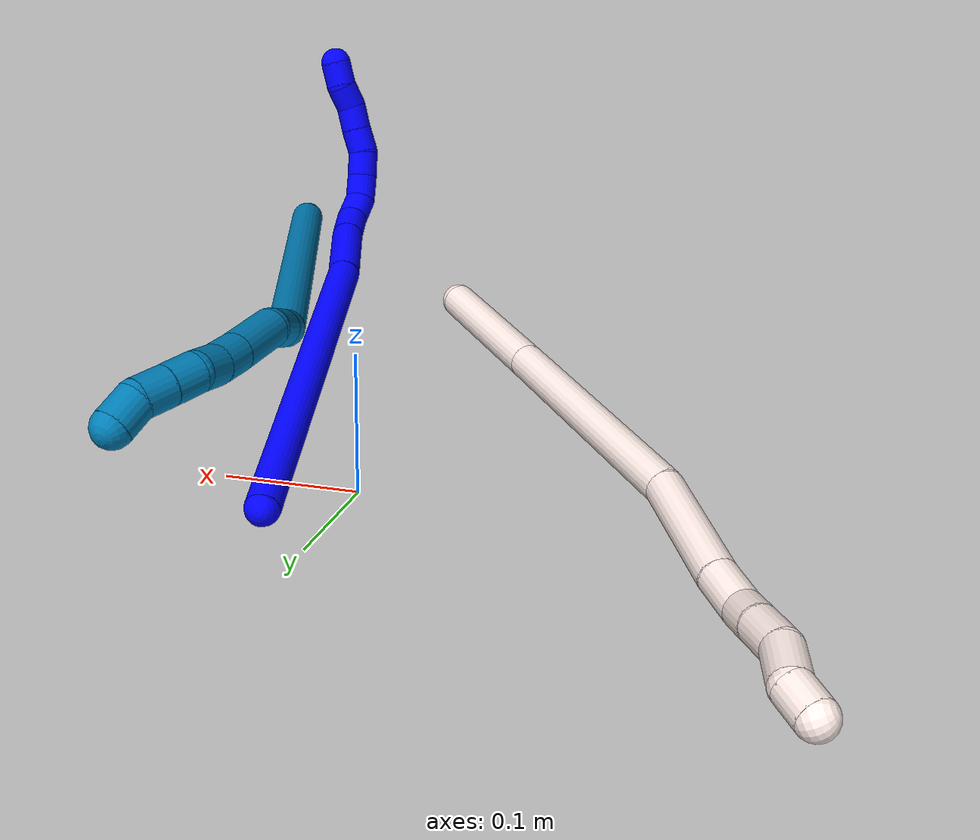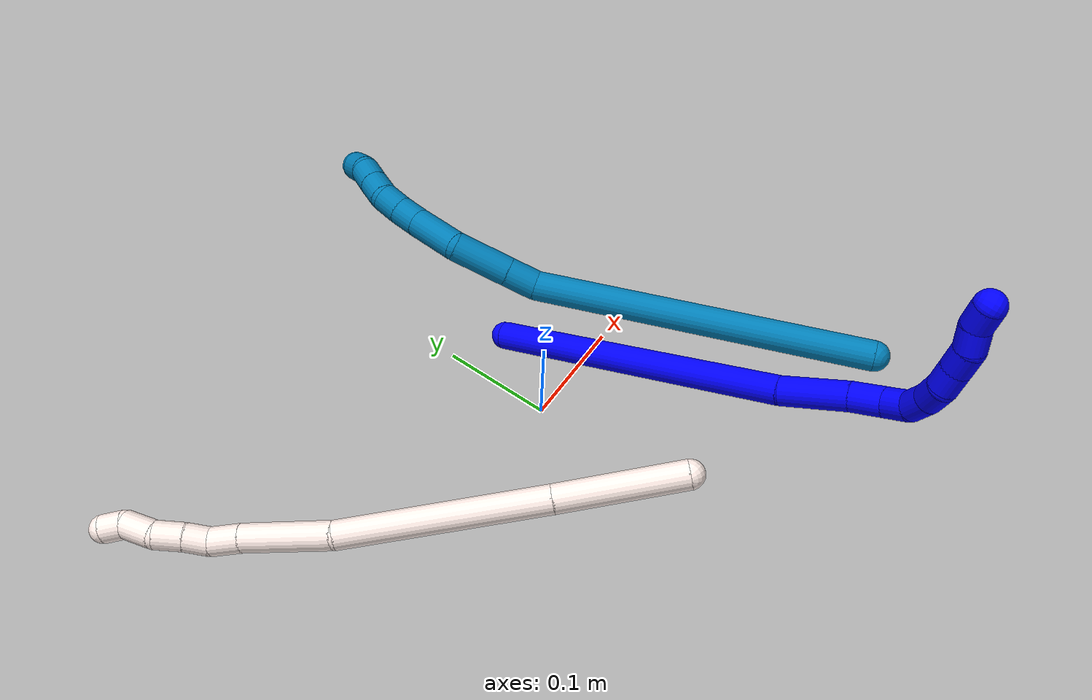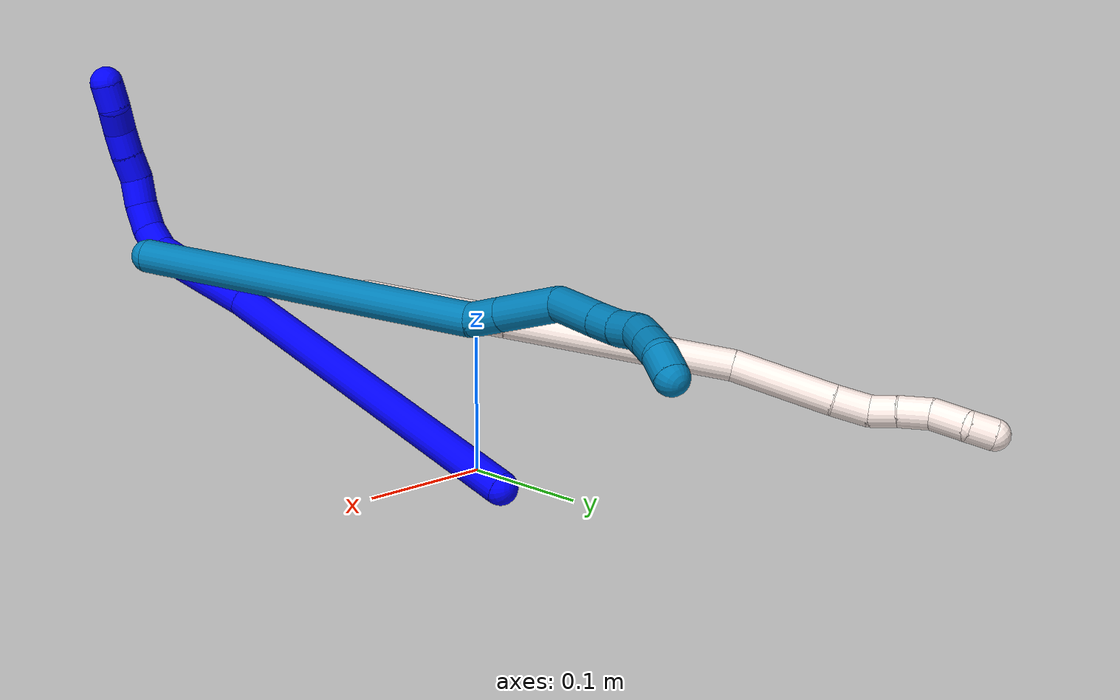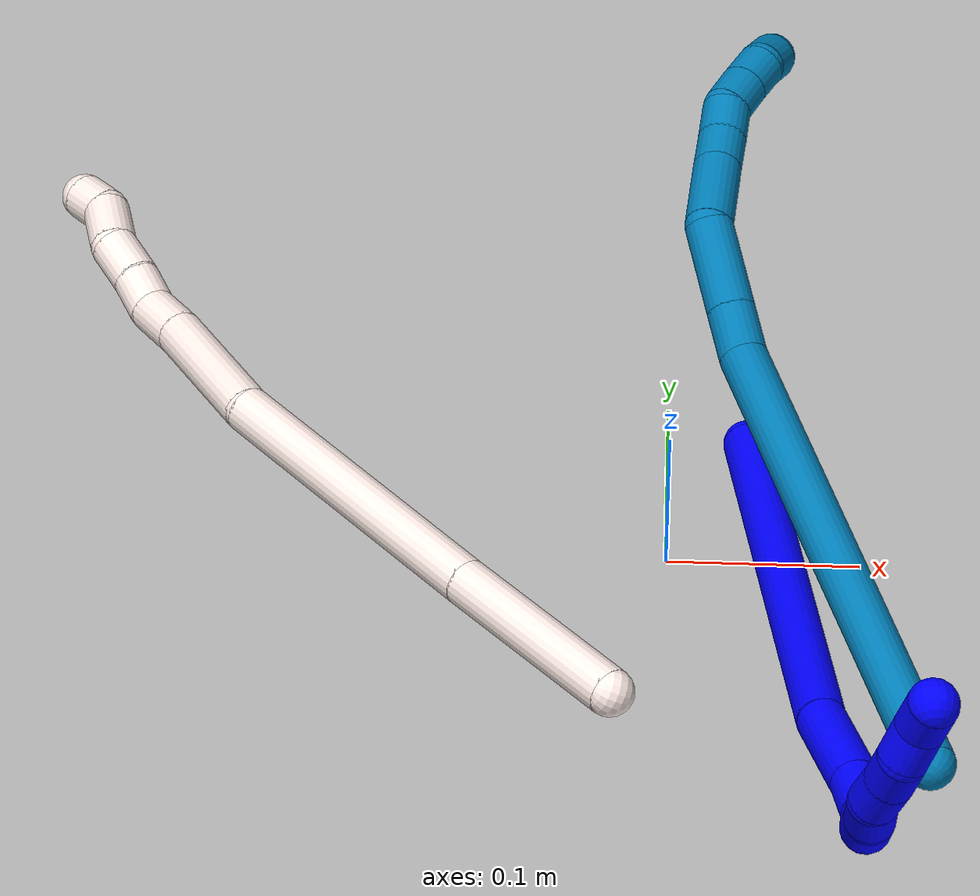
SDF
<sdf version="1.7">
 <world name="default">
  <model name="photoneo_s_sensor">
   <static>1</static>
   <pose>0 0 2 1.57079 1.57079 3.14159</pose>
   <link name="link">
    <inertial><mass>0.1</mass></inertial>
    <sensor name="sensor" type="depth">
     <update_rate>30</update_rate>
     <camera>
      <horizontal_fov>1.22</horizontal_fov>
      <image><width>1920</width><height>1200</height><format>B8G8R8</format></image>
      <clip><near>0.1</near><far>4</far></clip>
      <depth_camera><output>points</output></depth_camera>
     </camera>
     <plugin name="camera_plugin" filename="libgazebo_ros_depth_camera.so">
      <baseline>0.2</baseline>
      <alwaysOn>1</alwaysOn>
      <updateRate>0.0</updateRate>
      <cameraName>camera_ir</cameraName>
      <imageTopicName>/camera/color/image_raw</imageTopicName>
      <cameraInfoTopicName>/camera/color/camera_info</cameraInfoTopicName>
      <depthImageTopicName>/camera/depth/image_raw</depthImageTopicName>
      <depthImageCameraInfoTopicName>/camera/depth/camera_info</depthImageCameraInfoTopicName>
      <pointCloudTopicName>/camera/depth/points</pointCloudTopicName>
      <frameName>fr_optical</frameName>
      <pointCloudCutoff>0.1</pointCloudCutoff>
      <pointCloudCutoffMax>2.0</pointCloudCutoffMax>
      <distortionK1>0</distortionK1>
      <distortionK2>0</distortionK2>
      <distortionK3>0</distortionK3>
      <distortionT1>0</distortionT1>
      <distortionT2>0</distortionT2>
      <CxPrime>0</CxPrime>
      <Cx>0</Cx>
      <Cy>0</Cy>
      <focalLength>0</focalLength>
      <hackBaseline>0</hackBaseline>
     </plugin>
    </sensor>
   </link>
  </model>
  <model name="bin">
   <static>1</static>
   <link name="bottom">
    <collision name="collision-bottom">
     <pose>0 0 -0.01 0 -0 0</pose>
     <geometry><box><size>0.8 0.6 0.02</size></box></geometry>
     <surface>
      <friction><ode><mu>100</mu><mu2>100</mu2></ode></friction>
      <contact><collide_bitmask>65535</collide_bitmask></contact>
     </surface>
    </collision>
   </link>
   <link name="west_wall">
    <collision name="collision-west_wall">
     <pose>-0.41 0 0.1 0 -0 0</pose>
     <geometry><box><size>0.02 0.6 0.2</size></box></geometry>
     <surface>
      <friction><ode><mu>100</mu><mu2>100</mu2></ode></friction>
      <contact><collide_bitmask>65535</collide_bitmask></contact>
     </surface>
    </collision>
   </link>
   <link name="east_wall">
    <collision name="collision-east_wall">
     <pose>0.41 0 0.1 0 -0 0</pose>
     <geometry><box><size>0.02 0.6 0.2</size></box></geometry>
     <surface>
      <friction><ode><mu>100</mu><mu2>100</mu2></ode></friction>
      <contact><collide_bitmask>65535</collide_bitmask></contact>
     </surface>
    </collision>
   </link>
   <link name="south_wall">
    <collision name="collision-south_wall">
     <pose>0 -0.31 0.1 0 -0 0</pose>
     <geometry><box><size>0.8 0.02 0.2</size></box></geometry>
     <surface>
      <friction><ode><mu>100</mu><mu2>100</mu2></ode></friction>
      <contact><collide_bitmask>65535</collide_bitmask></contact>
     </surface>
    </collision>
   </link>
   <link name="north_wall">
    <collision name="collision-north_wall">
     <pose>0 0.31 0.1 0 -0 0</pose>
     <geometry><box><size>0.8 0.02 0.2</size></box></geometry>
     <surface>
      <friction><ode><mu>100</mu><mu2>100</mu2></ode></friction>
      <contact><collide_bitmask>65535</collide_bitmask></contact>
     </surface>
    </collision>
   </link>
  </model>
  <model name="1">
   <static>0</static>
   <link name="1">
    <collision name="collision-cylinder-e_1_1_4">
     <pose>0.005878 -0.070791 0.115416 0.550181 0.043387 0.012248</pose>
     <geometry><cylinder><radius>0.0125</radius><length>0.271048</length></cylinder></geometry>
     <surface>
      <friction><ode><mu>1.16</mu><mu2>1.16</mu2><slip1>0</slip1><slip2>0</slip2></ode></friction>
      <contact><ode><kp>1e+06</kp><kd>1</kd><max_vel>0</max_vel><min_depth>0.001</min_depth></ode></contact>
     </surface>
    </collision>
    <visual name="visual-cylinder-e_1_1_4">
     <pose>0.005878 -0.070791 0.115416 0.550181 0.043387 0.012248</pose>
     <geometry><cylinder><radius>0.0125</radius><length>0.271048</length></cylinder></geometry>
     <material><ambient>0 0 1 1</ambient></material>
    </visual>
    <collision name="collision-cylinder-e_2_4_5">
     <pose>0.008923 -0.156634 0.254653 0.563527 -0.100219 -0.029032</pose>
     <geometry><cylinder><radius>0.0125</radius><length>0.05664</length></cylinder></geometry>
     <surface>
      <friction><ode><mu>1.16</mu><mu2>1.16</mu2><slip1>0</slip1><slip2>0</slip2></ode></friction>
      <contact><ode><kp>1e+06</kp><kd>1</kd><max_vel>0</max_vel><min_depth>0.001</min_depth></ode></contact>
     </surface>
    </collision>
    <visual name="visual-cylinder-e_2_4_5">
     <pose>0.008923 -0.156634 0.254653 0.563527 -0.100219 -0.029032</pose>
     <geometry><cylinder><radius>0.0125</radius><length>0.05664</length></cylinder></geometry>
     <material><ambient>0 0 1 1</ambient></material>
    </visual>
    <collision name="collision-cylinder-e_3_5_6">
     <pose>0.005864 -0.178736 0.290444 0.532309 -0.016178 -0.004411</pose>
     <geometry><cylinder><radius>0.0125</radius><length>0.027787</length></cylinder></geometry>
     <surface>
      <friction><ode><mu>1.16</mu><mu2>1.16</mu2><slip1>0</slip1><slip2>0</slip2></ode></friction>
      <contact><ode><kp>1e+06</kp><kd>1</kd><max_vel>0</max_vel><min_depth>0.001</min_depth></ode></contact>
     </surface>
    </collision>
    <visual name="visual-cylinder-e_3_5_6">
     <pose>0.005864 -0.178736 0.290444 0.532309 -0.016178 -0.004411</pose>
     <geometry><cylinder><radius>0.0125</radius><length>0.027787</length></cylinder></geometry>
     <material><ambient>0 0 1 1</ambient></material>
    </visual>
    <collision name="collision-cylinder-e_4_6_7">
     <pose>0.008291 -0.193522 0.309705 0.814885 0.244421 0.10592</pose>
     <geometry><cylinder><radius>0.0125</radius><length>0.021911</length></cylinder></geometry>
     <surface>
      <friction><ode><mu>1.16</mu><mu2>1.16</mu2><slip1>0</slip1><slip2>0</slip2></ode></friction>
      <contact><ode><kp>1e+06</kp><kd>1</kd><max_vel>0</max_vel><min_depth>0.001</min_depth></ode></contact>
     </surface>
    </collision>
    <visual name="visual-cylinder-e_4_6_7">
     <pose>0.008291 -0.193522 0.309705 0.814885 0.244421 0.10592</pose>
     <geometry><cylinder><radius>0.0125</radius><length>0.021911</length></cylinder></geometry>
     <material><ambient>0 0 1 1</ambient></material>
    </visual>
    <collision name="collision-cylinder-e_5_7_8">
     <pose>0.012339 -0.211432 0.319487 1.3308 0.132567 0.104096</pose>
     <geometry><cylinder><radius>0.0125</radius><length>0.021137</length></cylinder></geometry>
     <surface>
      <friction><ode><mu>1.16</mu><mu2>1.16</mu2><slip1>0</slip1><slip2>0</slip2></ode></friction>
      <contact><ode><kp>1e+06</kp><kd>1</kd><max_vel>0</max_vel><min_depth>0.001</min_depth></ode></contact>
     </surface>
    </collision>
    <visual name="visual-cylinder-e_5_7_8">
     <pose>0.012339 -0.211432 0.319487 1.3308 0.132567 0.104096</pose>
     <geometry><cylinder><radius>0.0125</radius><length>0.021137</length></cylinder></geometry>
     <material><ambient>0 0 1 1</ambient></material>
    </visual>
    <collision name="collision-cylinder-e_6_8_9">
     <pose>0.015147 -0.231978 0.322417 1.52843 0.135079 0.129491</pose>
     <geometry><cylinder><radius>0.0125</radius><length>0.02095</length></cylinder></geometry>
     <surface>
      <friction><ode><mu>1.16</mu><mu2>1.16</mu2><slip1>0</slip1><slip2>0</slip2></ode></friction>
      <contact><ode><kp>1e+06</kp><kd>1</kd><max_vel>0</max_vel><min_depth>0.001</min_depth></ode></contact>
     </surface>
    </collision>
    <visual name="visual-cylinder-e_6_8_9">
     <pose>0.015147 -0.231978 0.322417 1.52843 0.135079 0.129491</pose>
     <geometry><cylinder><radius>0.0125</radius><length>0.02095</length></cylinder></geometry>
     <material><ambient>0 0 1 1</ambient></material>
    </visual>
    <collision name="collision-cylinder-e_7_9_10">
     <pose>0.014725 -0.252303 0.322275 1.62912 -0.1817 -0.192554</pose>
     <geometry><cylinder><radius>0.0125</radius><length>0.020276</length></cylinder></geometry>
     <surface>
      <friction><ode><mu>1.16</mu><mu2>1.16</mu2><slip1>0</slip1><slip2>0</slip2></ode></friction>
      <contact><ode><kp>1e+06</kp><kd>1</kd><max_vel>0</max_vel><min_depth>0.001</min_depth></ode></contact>
     </surface>
    </collision>
    <visual name="visual-cylinder-e_7_9_10">
     <pose>0.014725 -0.252303 0.322275 1.62912 -0.1817 -0.192554</pose>
     <geometry><cylinder><radius>0.0125</radius><length>0.020276</length></cylinder></geometry>
     <material><ambient>0 0 1 1</ambient></material>
    </visual>
    <collision name="collision-cylinder-e_8_10_11">
     <pose>0.011833 -0.272296 0.320922 1.64756 -0.104958 -0.113324</pose>
     <geometry><cylinder><radius>0.0125</radius><length>0.020249</length></cylinder></geometry>
     <surface>
      <friction><ode><mu>1.16</mu><mu2>1.16</mu2><slip1>0</slip1><slip2>0</slip2></ode></friction>
      <contact><ode><kp>1e+06</kp><kd>1</kd><max_vel>0</max_vel><min_depth>0.001</min_depth></ode></contact>
     </surface>
    </collision>
    <visual name="visual-cylinder-e_8_10_11">
     <pose>0.011833 -0.272296 0.320922 1.64756 -0.104958 -0.113324</pose>
     <geometry><cylinder><radius>0.0125</radius><length>0.020249</length></cylinder></geometry>
     <material><ambient>0 0 1 1</ambient></material>
    </visual>
    <collision name="collision-cylinder-e_9_11_12">
     <pose>0.008215 -0.291352 0.316663 1.9398 -0.258589 -0.374915</pose>
     <geometry><cylinder><radius>0.0125</radius><length>0.02</length></cylinder></geometry>
     <surface>
      <friction><ode><mu>1.16</mu><mu2>1.16</mu2><slip1>0</slip1><slip2>0</slip2></ode></friction>
      <contact><ode><kp>1e+06</kp><kd>1</kd><max_vel>0</max_vel><min_depth>0.001</min_depth></ode></contact>
     </surface>
    </collision>
    <visual name="visual-cylinder-e_9_11_12">
     <pose>0.008215 -0.291352 0.316663 1.9398 -0.258589 -0.374915</pose>
     <geometry><cylinder><radius>0.0125</radius><length>0.02</length></cylinder></geometry>
     <material><ambient>0 0 1 1</ambient></material>
    </visual>
    <collision name="collision-cylinder-e_10_12_2">
     <pose>0.004509 -0.310264 0.3123 1.6591 -0.115137 -0.125754</pose>
     <geometry><cylinder><radius>0.0125</radius><length>0.02</length></cylinder></geometry>
     <surface>
      <friction><ode><mu>1.16</mu><mu2>1.16</mu2><slip1>0</slip1><slip2>0</slip2></ode></friction>
      <contact><ode><kp>1e+06</kp><kd>1</kd><max_vel>0</max_vel><min_depth>0.001</min_depth></ode></contact>
     </surface>
    </collision>
    <visual name="visual-cylinder-e_10_12_2">
     <pose>0.004509 -0.310264 0.3123 1.6591 -0.115137 -0.125754</pose>
     <geometry><cylinder><radius>0.0125</radius><length>0.02</length></cylinder></geometry>
     <material><ambient>0 0 1 1</ambient></material>
    </visual>
    <collision name="collision-sphere-2">
     <pose>0.00336 -0.320159 0.311423 0 -0 0</pose>
     <geometry><sphere><radius>0.0125</radius></sphere></geometry>
     <surface>
      <friction><ode><mu>1.16</mu><mu2>1.16</mu2><slip1>0</slip1><slip2>0</slip2></ode></friction>
      <contact><ode><kp>1e+06</kp><kd>1</kd><max_vel>0</max_vel><min_depth>0.001</min_depth></ode></contact>
     </surface>
    </collision>
    <visual name="visual-sphere-2">
     <pose>0.00336 -0.320159 0.311423 0 -0 0</pose>
     <geometry><sphere><radius>0.0125</radius></sphere></geometry>
     <material><ambient>0 0 1 1</ambient></material>
    </visual>
    <collision name="collision-sphere-12">
     <pose>0.005658 -0.300369 0.313176 0 -0 0</pose>
     <geometry><sphere><radius>0.0125</radius></sphere></geometry>
     <surface>
      <friction><ode><mu>1.16</mu><mu2>1.16</mu2><slip1>0</slip1><slip2>0</slip2></ode></friction>
      <contact><ode><kp>1e+06</kp><kd>1</kd><max_vel>0</max_vel><min_depth>0.001</min_depth></ode></contact>
     </surface>
    </collision>
    <visual name="visual-sphere-12">
     <pose>0.005658 -0.300369 0.313176 0 -0 0</pose>
     <geometry><sphere><radius>0.0125</radius></sphere></geometry>
     <material><ambient>0 0 1 1</ambient></material>
    </visual>
    <collision name="collision-sphere-11">
     <pose>0.010772 -0.282335 0.32015 0 -0 0</pose>
     <geometry><sphere><radius>0.0125</radius></sphere></geometry>
     <surface>
      <friction><ode><mu>1.16</mu><mu2>1.16</mu2><slip1>0</slip1><slip2>0</slip2></ode></friction>
      <contact><ode><kp>1e+06</kp><kd>1</kd><max_vel>0</max_vel><min_depth>0.001</min_depth></ode></contact>
     </surface>
    </collision>
    <visual name="visual-sphere-11">
     <pose>0.010772 -0.282335 0.32015 0 -0 0</pose>
     <geometry><sphere><radius>0.0125</radius></sphere></geometry>
     <material><ambient>0 0 1 1</ambient></material>
    </visual>
    <collision name="collision-sphere-10">
     <pose>0.012893 -0.262257 0.321694 0 -0 0</pose>
     <geometry><sphere><radius>0.0125</radius></sphere></geometry>
     <surface>
      <friction><ode><mu>1.16</mu><mu2>1.16</mu2><slip1>0</slip1><slip2>0</slip2></ode></friction>
      <contact><ode><kp>1e+06</kp><kd>1</kd><max_vel>0</max_vel><min_depth>0.001</min_depth></ode></contact>
     </surface>
    </collision>
    <visual name="visual-sphere-10">
     <pose>0.012893 -0.262257 0.321694 0 -0 0</pose>
     <geometry><sphere><radius>0.0125</radius></sphere></geometry>
     <material><ambient>0 0 1 1</ambient></material>
    </visual>
    <collision name="collision-sphere-9">
     <pose>0.016557 -0.242348 0.322856 0 -0 0</pose>
     <geometry><sphere><radius>0.0125</radius></sphere></geometry>
     <surface>
      <friction><ode><mu>1.16</mu><mu2>1.16</mu2><slip1>0</slip1><slip2>0</slip2></ode></friction>
      <contact><ode><kp>1e+06</kp><kd>1</kd><max_vel>0</max_vel><min_depth>0.001</min_depth></ode></contact>
     </surface>
    </collision>
    <visual name="visual-sphere-9">
     <pose>0.016557 -0.242348 0.322856 0 -0 0</pose>
     <geometry><sphere><radius>0.0125</radius></sphere></geometry>
     <material><ambient>0 0 1 1</ambient></material>
    </visual>
    <collision name="collision-sphere-4">
     <pose>0.011756 -0.141582 0.230832 0 -0 0</pose>
     <geometry><sphere><radius>0.0125</radius></sphere></geometry>
     <surface>
      <friction><ode><mu>1.16</mu><mu2>1.16</mu2><slip1>0</slip1><slip2>0</slip2></ode></friction>
      <contact><ode><kp>1e+06</kp><kd>1</kd><max_vel>0</max_vel><min_depth>0.001</min_depth></ode></contact>
     </surface>
    </collision>
    <visual name="visual-sphere-4">
     <pose>0.011756 -0.141582 0.230832 0 -0 0</pose>
     <geometry><sphere><radius>0.0125</radius></sphere></geometry>
     <material><ambient>0 0 1 1</ambient></material>
    </visual>
    <collision name="collision-sphere-1">
     <geometry><sphere><radius>0.0125</radius></sphere></geometry>
     <surface>
      <friction><ode><mu>1.16</mu><mu2>1.16</mu2><slip1>0</slip1><slip2>0</slip2></ode></friction>
      <contact><ode><kp>1e+06</kp><kd>1</kd><max_vel>0</max_vel><min_depth>0.001</min_depth></ode></contact>
     </surface>
    </collision>
    <visual name="visual-sphere-1">
     <geometry><sphere><radius>0.0125</radius></sphere></geometry>
     <material><ambient>0 0 1 1</ambient></material>
    </visual>
    <collision name="collision-sphere-8">
     <pose>0.013736 -0.221608 0.321977 0 -0 0</pose>
     <geometry><sphere><radius>0.0125</radius></sphere></geometry>
     <surface>
      <friction><ode><mu>1.16</mu><mu2>1.16</mu2><slip1>0</slip1><slip2>0</slip2></ode></friction>
      <contact><ode><kp>1e+06</kp><kd>1</kd><max_vel>0</max_vel><min_depth>0.001</min_depth></ode></contact>
     </surface>
    </collision>
    <visual name="visual-sphere-8">
     <pose>0.013736 -0.221608 0.321977 0 -0 0</pose>
     <geometry><sphere><radius>0.0125</radius></sphere></geometry>
     <material><ambient>0 0 1 1</ambient></material>
    </visual>
    <collision name="collision-sphere-5">
     <pose>0.006089 -0.171686 0.278474 0 -0 0</pose>
     <geometry><sphere><radius>0.0125</radius></sphere></geometry>
     <surface>
      <friction><ode><mu>1.16</mu><mu2>1.16</mu2><slip1>0</slip1><slip2>0</slip2></ode></friction>
      <contact><ode><kp>1e+06</kp><kd>1</kd><max_vel>0</max_vel><min_depth>0.001</min_depth></ode></contact>
     </surface>
    </collision>
    <visual name="visual-sphere-5">
     <pose>0.006089 -0.171686 0.278474 0 -0 0</pose>
     <geometry><sphere><radius>0.0125</radius></sphere></geometry>
     <material><ambient>0 0 1 1</ambient></material>
    </visual>
    <collision name="collision-sphere-6">
     <pose>0.00564 -0.185787 0.302414 0 -0 0</pose>
     <geometry><sphere><radius>0.0125</radius></sphere></geometry>
     <surface>
      <friction><ode><mu>1.16</mu><mu2>1.16</mu2><slip1>0</slip1><slip2>0</slip2></ode></friction>
      <contact><ode><kp>1e+06</kp><kd>1</kd><max_vel>0</max_vel><min_depth>0.001</min_depth></ode></contact>
     </surface>
    </collision>
    <visual name="visual-sphere-6">
     <pose>0.00564 -0.185787 0.302414 0 -0 0</pose>
     <geometry><sphere><radius>0.0125</radius></sphere></geometry>
     <material><ambient>0 0 1 1</ambient></material>
    </visual>
    <collision name="collision-sphere-7">
     <pose>0.010942 -0.201256 0.316997 0 -0 0</pose>
     <geometry><sphere><radius>0.0125</radius></sphere></geometry>
     <surface>
      <friction><ode><mu>1.16</mu><mu2>1.16</mu2><slip1>0</slip1><slip2>0</slip2></ode></friction>
      <contact><ode><kp>1e+06</kp><kd>1</kd><max_vel>0</max_vel><min_depth>0.001</min_depth></ode></contact>
     </surface>
    </collision>
    <visual name="visual-sphere-7">
     <pose>0.010942 -0.201256 0.316997 0 -0 0</pose>
     <geometry><sphere><radius>0.0125</radius></sphere></geometry>
     <material><ambient>0 0 1 1</ambient></material>
    </visual>
    <inertial>
     <pose>0.007628 -0.138515 0.199367 0 -0 0</pose>
     <mass>0.5</mass>
     <inertia>
      <ixx>0.001718</ixx>
      <ixy>0</ixy>
      <ixz>0</ixz>
      <iyy>0.001437</iyy>
      <iyz>0</iyz>
      <izz>0.000847</izz>
     </inertia>
    </inertial>
   </link>
   <pose>0.041094 0.070093 0.011469 -1.7515 -0.133 -3.00849</pose>
  </model>
  <model name="9">
   <static>0</static>
   <link name="9">
    <collision name="collision-cylinder-e_1_1_4">
     <pose>-0.044476 0.050729 -0.122564 -2.74917 -0.323517 1.37479</pose>
     <geometry><cylinder><radius>0.0125</radius><length>0.279811</length></cylinder></geometry>
     <surface>
      <friction><ode><mu>1.16</mu><mu2>1.16</mu2><slip1>0</slip1><slip2>0</slip2></ode></friction>
      <contact><ode><kp>1e+06</kp><kd>1</kd><max_vel>0</max_vel><min_depth>0.001</min_depth></ode></contact>
     </surface>
    </collision>
    <visual name="visual-cylinder-e_1_1_4">
     <pose>-0.044476 0.050729 -0.122564 -2.74917 -0.323517 1.37479</pose>
     <geometry><cylinder><radius>0.0125</radius><length>0.279811</length></cylinder></geometry>
     <material><ambient>0 0.490196 0.709804 1</ambient></material>
    </visual>
    <collision name="collision-cylinder-e_2_4_5">
     <pose>-0.090334 0.109659 -0.25546 -2.47064 -0.104337 0.297318</pose>
     <geometry><cylinder><radius>0.0125</radius><length>0.026526</length></cylinder></geometry>
     <surface>
      <friction><ode><mu>1.16</mu><mu2>1.16</mu2><slip1>0</slip1><slip2>0</slip2></ode></friction>
      <contact><ode><kp>1e+06</kp><kd>1</kd><max_vel>0</max_vel><min_depth>0.001</min_depth></ode></contact>
     </surface>
    </collision>
    <visual name="visual-cylinder-e_2_4_5">
     <pose>-0.090334 0.109659 -0.25546 -2.47064 -0.104337 0.297318</pose>
     <geometry><cylinder><radius>0.0125</radius><length>0.026526</length></cylinder></geometry>
     <material><ambient>0 0.490196 0.709804 1</ambient></material>
    </visual>
    <collision name="collision-cylinder-e_3_5_6">
     <pose>-0.094191 0.132771 -0.284731 -2.47461 -0.102346 0.293562</pose>
     <geometry><cylinder><radius>0.0125</radius><length>0.048463</length></cylinder></geometry>
     <surface>
      <friction><ode><mu>1.16</mu><mu2>1.16</mu2><slip1>0</slip1><slip2>0</slip2></ode></friction>
      <contact><ode><kp>1e+06</kp><kd>1</kd><max_vel>0</max_vel><min_depth>0.001</min_depth></ode></contact>
     </surface>
    </collision>
    <visual name="visual-cylinder-e_3_5_6">
     <pose>-0.094191 0.132771 -0.284731 -2.47461 -0.102346 0.293562</pose>
     <geometry><cylinder><radius>0.0125</radius><length>0.048463</length></cylinder></geometry>
     <material><ambient>0 0.490196 0.709804 1</ambient></material>
    </visual>
    <collision name="collision-cylinder-e_4_6_7">
     <pose>-0.095772 0.151556 -0.324719 -2.95965 0.041803 -0.450528</pose>
     <geometry><cylinder><radius>0.0125</radius><length>0.042841</length></cylinder></geometry>
     <surface>
      <friction><ode><mu>1.16</mu><mu2>1.16</mu2><slip1>0</slip1><slip2>0</slip2></ode></friction>
      <contact><ode><kp>1e+06</kp><kd>1</kd><max_vel>0</max_vel><min_depth>0.001</min_depth></ode></contact>
     </surface>
    </collision>
    <visual name="visual-cylinder-e_4_6_7">
     <pose>-0.095772 0.151556 -0.324719 -2.95965 0.041803 -0.450528</pose>
     <geometry><cylinder><radius>0.0125</radius><length>0.042841</length></cylinder></geometry>
     <material><ambient>0 0.490196 0.709804 1</ambient></material>
    </visual>
    <collision name="collision-cylinder-e_5_7_8">
     <pose>-0.094073 0.157585 -0.356199 -2.93768 0.075329 -0.705784</pose>
     <geometry><cylinder><radius>0.0125</radius><length>0.021365</length></cylinder></geometry>
     <surface>
      <friction><ode><mu>1.16</mu><mu2>1.16</mu2><slip1>0</slip1><slip2>0</slip2></ode></friction>
      <contact><ode><kp>1e+06</kp><kd>1</kd><max_vel>0</max_vel><min_depth>0.001</min_depth></ode></contact>
     </surface>
    </collision>
    <visual name="visual-cylinder-e_5_7_8">
     <pose>-0.094073 0.157585 -0.356199 -2.93768 0.075329 -0.705784</pose>
     <geometry><cylinder><radius>0.0125</radius><length>0.021365</length></cylinder></geometry>
     <material><ambient>0 0.490196 0.709804 1</ambient></material>
    </visual>
    <collision name="collision-cylinder-e_6_8_9">
     <pose>-0.091909 0.163035 -0.37617 -2.80929 0.133934 -0.760885</pose>
     <geometry><cylinder><radius>0.0125</radius><length>0.020366</length></cylinder></geometry>
     <surface>
      <friction><ode><mu>1.16</mu><mu2>1.16</mu2><slip1>0</slip1><slip2>0</slip2></ode></friction>
      <contact><ode><kp>1e+06</kp><kd>1</kd><max_vel>0</max_vel><min_depth>0.001</min_depth></ode></contact>
     </surface>
    </collision>
    <visual name="visual-cylinder-e_6_8_9">
     <pose>-0.091909 0.163035 -0.37617 -2.80929 0.133934 -0.760885</pose>
     <geometry><cylinder><radius>0.0125</radius><length>0.020366</length></cylinder></geometry>
     <material><ambient>0 0.490196 0.709804 1</ambient></material>
    </visual>
    <collision name="collision-cylinder-e_7_9_10">
     <pose>-0.08742 0.16596 -0.395392 3.10371 0.312346 2.90214</pose>
     <geometry><cylinder><radius>0.0125</radius><length>0.020364</length></cylinder></geometry>
     <surface>
      <friction><ode><mu>1.16</mu><mu2>1.16</mu2><slip1>0</slip1><slip2>0</slip2></ode></friction>
      <contact><ode><kp>1e+06</kp><kd>1</kd><max_vel>0</max_vel><min_depth>0.001</min_depth></ode></contact>
     </surface>
    </collision>
    <visual name="visual-cylinder-e_7_9_10">
     <pose>-0.08742 0.16596 -0.395392 3.10371 0.312346 2.90214</pose>
     <geometry><cylinder><radius>0.0125</radius><length>0.020364</length></cylinder></geometry>
     <material><ambient>0 0.490196 0.709804 1</ambient></material>
    </visual>
    <collision name="collision-cylinder-e_8_10_11">
     <pose>-0.080938 0.165045 -0.414527 3.08365 0.340382 2.80749</pose>
     <geometry><cylinder><radius>0.0125</radius><length>0.020091</length></cylinder></geometry>
     <surface>
      <friction><ode><mu>1.16</mu><mu2>1.16</mu2><slip1>0</slip1><slip2>0</slip2></ode></friction>
      <contact><ode><kp>1e+06</kp><kd>1</kd><max_vel>0</max_vel><min_depth>0.001</min_depth></ode></contact>
     </surface>
    </collision>
    <visual name="visual-cylinder-e_8_10_11">
     <pose>-0.080938 0.165045 -0.414527 3.08365 0.340382 2.80749</pose>
     <geometry><cylinder><radius>0.0125</radius><length>0.020091</length></cylinder></geometry>
     <material><ambient>0 0.490196 0.709804 1</ambient></material>
    </visual>
    <collision name="collision-cylinder-e_9_11_2">
     <pose>-0.077238 0.161094 -0.433469 2.79729 0.034387 0.197151</pose>
     <geometry><cylinder><radius>0.0125</radius><length>0.020173</length></cylinder></geometry>
     <surface>
      <friction><ode><mu>1.16</mu><mu2>1.16</mu2><slip1>0</slip1><slip2>0</slip2></ode></friction>
      <contact><ode><kp>1e+06</kp><kd>1</kd><max_vel>0</max_vel><min_depth>0.001</min_depth></ode></contact>
     </surface>
    </collision>
    <visual name="visual-cylinder-e_9_11_2">
     <pose>-0.077238 0.161094 -0.433469 2.79729 0.034387 0.197151</pose>
     <geometry><cylinder><radius>0.0125</radius><length>0.020173</length></cylinder></geometry>
     <material><ambient>0 0.490196 0.709804 1</ambient></material>
    </visual>
    <collision name="collision-sphere-2">
     <pose>-0.076891 0.157691 -0.442958 0 -0 0</pose>
     <geometry><sphere><radius>0.0125</radius></sphere></geometry>
     <surface>
      <friction><ode><mu>1.16</mu><mu2>1.16</mu2><slip1>0</slip1><slip2>0</slip2></ode></friction>
      <contact><ode><kp>1e+06</kp><kd>1</kd><max_vel>0</max_vel><min_depth>0.001</min_depth></ode></contact>
     </surface>
    </collision>
    <visual name="visual-sphere-2">
     <pose>-0.076891 0.157691 -0.442958 0 -0 0</pose>
     <geometry><sphere><radius>0.0125</radius></sphere></geometry>
     <material><ambient>0 0.490196 0.709804 1</ambient></material>
    </visual>
    <collision name="collision-sphere-11">
     <pose>-0.077584 0.164496 -0.42398 0 -0 0</pose>
     <geometry><sphere><radius>0.0125</radius></sphere></geometry>
     <surface>
      <friction><ode><mu>1.16</mu><mu2>1.16</mu2><slip1>0</slip1><slip2>0</slip2></ode></friction>
      <contact><ode><kp>1e+06</kp><kd>1</kd><max_vel>0</max_vel><min_depth>0.001</min_depth></ode></contact>
     </surface>
    </collision>
    <visual name="visual-sphere-11">
     <pose>-0.077584 0.164496 -0.42398 0 -0 0</pose>
     <geometry><sphere><radius>0.0125</radius></sphere></geometry>
     <material><ambient>0 0.490196 0.709804 1</ambient></material>
    </visual>
    <collision name="collision-sphere-10">
     <pose>-0.084291 0.165593 -0.405074 0 -0 0</pose>
     <geometry><sphere><radius>0.0125</radius></sphere></geometry>
     <surface>
      <friction><ode><mu>1.16</mu><mu2>1.16</mu2><slip1>0</slip1><slip2>0</slip2></ode></friction>
      <contact><ode><kp>1e+06</kp><kd>1</kd><max_vel>0</max_vel><min_depth>0.001</min_depth></ode></contact>
     </surface>
    </collision>
    <visual name="visual-sphere-10">
     <pose>-0.084291 0.165593 -0.405074 0 -0 0</pose>
     <geometry><sphere><radius>0.0125</radius></sphere></geometry>
     <material><ambient>0 0.490196 0.709804 1</ambient></material>
    </visual>
    <collision name="collision-sphere-9">
     <pose>-0.090549 0.166327 -0.385709 0 -0 0</pose>
     <geometry><sphere><radius>0.0125</radius></sphere></geometry>
     <surface>
      <friction><ode><mu>1.16</mu><mu2>1.16</mu2><slip1>0</slip1><slip2>0</slip2></ode></friction>
      <contact><ode><kp>1e+06</kp><kd>1</kd><max_vel>0</max_vel><min_depth>0.001</min_depth></ode></contact>
     </surface>
    </collision>
    <visual name="visual-sphere-9">
     <pose>-0.090549 0.166327 -0.385709 0 -0 0</pose>
     <geometry><sphere><radius>0.0125</radius></sphere></geometry>
     <material><ambient>0 0.490196 0.709804 1</ambient></material>
    </visual>
    <collision name="collision-sphere-4">
     <pose>-0.088953 0.101457 -0.245129 0 -0 0</pose>
     <geometry><sphere><radius>0.0125</radius></sphere></geometry>
     <surface>
      <friction><ode><mu>1.16</mu><mu2>1.16</mu2><slip1>0</slip1><slip2>0</slip2></ode></friction>
      <contact><ode><kp>1e+06</kp><kd>1</kd><max_vel>0</max_vel><min_depth>0.001</min_depth></ode></contact>
     </surface>
    </collision>
    <visual name="visual-sphere-4">
     <pose>-0.088953 0.101457 -0.245129 0 -0 0</pose>
     <geometry><sphere><radius>0.0125</radius></sphere></geometry>
     <material><ambient>0 0.490196 0.709804 1</ambient></material>
    </visual>
    <collision name="collision-sphere-1">
     <geometry><sphere><radius>0.0125</radius></sphere></geometry>
     <surface>
      <friction><ode><mu>1.16</mu><mu2>1.16</mu2><slip1>0</slip1><slip2>0</slip2></ode></friction>
      <contact><ode><kp>1e+06</kp><kd>1</kd><max_vel>0</max_vel><min_depth>0.001</min_depth></ode></contact>
     </surface>
    </collision>
    <visual name="visual-sphere-1">
     <geometry><sphere><radius>0.0125</radius></sphere></geometry>
     <material><ambient>0 0.490196 0.709804 1</ambient></material>
    </visual>
    <collision name="collision-sphere-8">
     <pose>-0.093269 0.159742 -0.36663 0 -0 0</pose>
     <geometry><sphere><radius>0.0125</radius></sphere></geometry>
     <surface>
      <friction><ode><mu>1.16</mu><mu2>1.16</mu2><slip1>0</slip1><slip2>0</slip2></ode></friction>
      <contact><ode><kp>1e+06</kp><kd>1</kd><max_vel>0</max_vel><min_depth>0.001</min_depth></ode></contact>
     </surface>
    </collision>
    <visual name="visual-sphere-8">
     <pose>-0.093269 0.159742 -0.36663 0 -0 0</pose>
     <geometry><sphere><radius>0.0125</radius></sphere></geometry>
     <material><ambient>0 0.490196 0.709804 1</ambient></material>
    </visual>
    <collision name="collision-sphere-5">
     <pose>-0.091716 0.11786 -0.265792 0 -0 0</pose>
     <geometry><sphere><radius>0.0125</radius></sphere></geometry>
     <surface>
      <friction><ode><mu>1.16</mu><mu2>1.16</mu2><slip1>0</slip1><slip2>0</slip2></ode></friction>
      <contact><ode><kp>1e+06</kp><kd>1</kd><max_vel>0</max_vel><min_depth>0.001</min_depth></ode></contact>
     </surface>
    </collision>
    <visual name="visual-sphere-5">
     <pose>-0.091716 0.11786 -0.265792 0 -0 0</pose>
     <geometry><sphere><radius>0.0125</radius></sphere></geometry>
     <material><ambient>0 0.490196 0.709804 1</ambient></material>
    </visual>
    <collision name="collision-sphere-6">
     <pose>-0.096667 0.147683 -0.30367 0 -0 0</pose>
     <geometry><sphere><radius>0.0125</radius></sphere></geometry>
     <surface>
      <friction><ode><mu>1.16</mu><mu2>1.16</mu2><slip1>0</slip1><slip2>0</slip2></ode></friction>
      <contact><ode><kp>1e+06</kp><kd>1</kd><max_vel>0</max_vel><min_depth>0.001</min_depth></ode></contact>
     </surface>
    </collision>
    <visual name="visual-sphere-6">
     <pose>-0.096667 0.147683 -0.30367 0 -0 0</pose>
     <geometry><sphere><radius>0.0125</radius></sphere></geometry>
     <material><ambient>0 0.490196 0.709804 1</ambient></material>
    </visual>
    <collision name="collision-sphere-7">
     <pose>-0.094877 0.155428 -0.345767 0 -0 0</pose>
     <geometry><sphere><radius>0.0125</radius></sphere></geometry>
     <surface>
      <friction><ode><mu>1.16</mu><mu2>1.16</mu2><slip1>0</slip1><slip2>0</slip2></ode></friction>
      <contact><ode><kp>1e+06</kp><kd>1</kd><max_vel>0</max_vel><min_depth>0.001</min_depth></ode></contact>
     </surface>
    </collision>
    <visual name="visual-sphere-7">
     <pose>-0.094877 0.155428 -0.345767 0 -0 0</pose>
     <geometry><sphere><radius>0.0125</radius></sphere></geometry>
     <material><ambient>0 0.490196 0.709804 1</ambient></material>
    </visual>
    <inertial>
     <pose>-0.06471 0.093326 -0.218354 0 -0 0</pose>
     <mass>0.5</mass>
     <inertia>
      <ixx>0.002062</ixx>
      <ixy>0</ixy>
      <ixz>0</ixz>
      <iyy>0.00159</iyy>
      <iyz>0</iyz>
      <izz>-0.000127</izz>
     </inertia>
    </inertial>
   </link>
   <pose>0.126455 -0.229286 0.143768 1.26632 -0.460081 0.00216</pose>
  </model>
  <model name="11">
   <static>0</static>
   <link name="11">
    <collision name="collision-cylinder-e_1_1_4">
     <pose>-0.03877 0.027258 0.02815 -0.769301 -0.780086 0.32982</pose>
     <geometry><cylinder><radius>0.0125</radius><length>0.110247</length></cylinder></geometry>
     <surface>
      <friction><ode><mu>1.16</mu><mu2>1.16</mu2><slip1>0</slip1><slip2>0</slip2></ode></friction>
      <contact><ode><kp>1e+06</kp><kd>1</kd><max_vel>0</max_vel><min_depth>0.001</min_depth></ode></contact>
     </surface>
    </collision>
    <visual name="visual-cylinder-e_1_1_4">
     <pose>-0.03877 0.027258 0.02815 -0.769301 -0.780086 0.32982</pose>
     <geometry><cylinder><radius>0.0125</radius><length>0.110247</length></cylinder></geometry>
     <material><ambient>1 0.933333 0.909804 1</ambient></material>
    </visual>
    <collision name="collision-cylinder-e_2_4_5">
     <pose>-0.140599 0.100125 0.101692 -0.78779 -0.775282 0.336189</pose>
     <geometry><cylinder><radius>0.0125</radius><length>0.180188</length></cylinder></geometry>
     <surface>
      <friction><ode><mu>1.16</mu><mu2>1.16</mu2><slip1>0</slip1><slip2>0</slip2></ode></friction>
      <contact><ode><kp>1e+06</kp><kd>1</kd><max_vel>0</max_vel><min_depth>0.001</min_depth></ode></contact>
     </surface>
    </collision>
    <visual name="visual-cylinder-e_2_4_5">
     <pose>-0.140599 0.100125 0.101692 -0.78779 -0.775282 0.336189</pose>
     <geometry><cylinder><radius>0.0125</radius><length>0.180188</length></cylinder></geometry>
     <material><ambient>1 0.933333 0.909804 1</ambient></material>
    </visual>
    <collision name="collision-cylinder-e_3_5_6">
     <pose>-0.234258 0.170076 0.15994 -1.08486 -0.838204 0.524656</pose>
     <geometry><cylinder><radius>0.0125</radius><length>0.082321</length></cylinder></geometry>
     <surface>
      <friction><ode><mu>1.16</mu><mu2>1.16</mu2><slip1>0</slip1><slip2>0</slip2></ode></friction>
      <contact><ode><kp>1e+06</kp><kd>1</kd><max_vel>0</max_vel><min_depth>0.001</min_depth></ode></contact>
     </surface>
    </collision>
    <visual name="visual-cylinder-e_3_5_6">
     <pose>-0.234258 0.170076 0.15994 -1.08486 -0.838204 0.524656</pose>
     <geometry><cylinder><radius>0.0125</radius><length>0.082321</length></cylinder></geometry>
     <material><ambient>1 0.933333 0.909804 1</ambient></material>
    </visual>
    <collision name="collision-cylinder-e_4_6_7">
     <pose>-0.275515 0.202062 0.17839 -0.939126 -0.844184 0.448094</pose>
     <geometry><cylinder><radius>0.0125</radius><length>0.028516</length></cylinder></geometry>
     <surface>
      <friction><ode><mu>1.16</mu><mu2>1.16</mu2><slip1>0</slip1><slip2>0</slip2></ode></friction>
      <contact><ode><kp>1e+06</kp><kd>1</kd><max_vel>0</max_vel><min_depth>0.001</min_depth></ode></contact>
     </surface>
    </collision>
    <visual name="visual-cylinder-e_4_6_7">
     <pose>-0.275515 0.202062 0.17839 -0.939126 -0.844184 0.448094</pose>
     <geometry><cylinder><radius>0.0125</radius><length>0.028516</length></cylinder></geometry>
     <material><ambient>1 0.933333 0.909804 1</ambient></material>
    </visual>
    <collision name="collision-cylinder-e_5_7_8">
     <pose>-0.29128 0.21811 0.188895 -1.04187 -0.48322 0.280934</pose>
     <geometry><cylinder><radius>0.0125</radius><length>0.021987</length></cylinder></geometry>
     <surface>
      <friction><ode><mu>1.16</mu><mu2>1.16</mu2><slip1>0</slip1><slip2>0</slip2></ode></friction>
      <contact><ode><kp>1e+06</kp><kd>1</kd><max_vel>0</max_vel><min_depth>0.001</min_depth></ode></contact>
     </surface>
    </collision>
    <visual name="visual-cylinder-e_5_7_8">
     <pose>-0.29128 0.21811 0.188895 -1.04187 -0.48322 0.280934</pose>
     <geometry><cylinder><radius>0.0125</radius><length>0.021987</length></cylinder></geometry>
     <material><ambient>1 0.933333 0.909804 1</ambient></material>
    </visual>
    <collision name="collision-cylinder-e_6_8_9">
     <pose>-0.303519 0.235579 0.19981 -0.985864 -0.580508 0.318176</pose>
     <geometry><cylinder><radius>0.0125</radius><length>0.026004</length></cylinder></geometry>
     <surface>
      <friction><ode><mu>1.16</mu><mu2>1.16</mu2><slip1>0</slip1><slip2>0</slip2></ode></friction>
      <contact><ode><kp>1e+06</kp><kd>1</kd><max_vel>0</max_vel><min_depth>0.001</min_depth></ode></contact>
     </surface>
    </collision>
    <visual name="visual-cylinder-e_6_8_9">
     <pose>-0.303519 0.235579 0.19981 -0.985864 -0.580508 0.318176</pose>
     <geometry><cylinder><radius>0.0125</radius><length>0.026004</length></cylinder></geometry>
     <material><ambient>1 0.933333 0.909804 1</ambient></material>
    </visual>
    <collision name="collision-cylinder-e_7_9_10">
     <pose>-0.319377 0.256586 0.207625 -1.42024 -0.625687 0.542483</pose>
     <geometry><cylinder><radius>0.0125</radius><length>0.029803</length></cylinder></geometry>
     <surface>
      <friction><ode><mu>1.16</mu><mu2>1.16</mu2><slip1>0</slip1><slip2>0</slip2></ode></friction>
      <contact><ode><kp>1e+06</kp><kd>1</kd><max_vel>0</max_vel><min_depth>0.001</min_depth></ode></contact>
     </surface>
    </collision>
    <visual name="visual-cylinder-e_7_9_10">
     <pose>-0.319377 0.256586 0.207625 -1.42024 -0.625687 0.542483</pose>
     <geometry><cylinder><radius>0.0125</radius><length>0.029803</length></cylinder></geometry>
     <material><ambient>1 0.933333 0.909804 1</ambient></material>
    </visual>
    <collision name="collision-cylinder-e_8_10_2">
     <pose>-0.336282 0.273449 0.213735 -0.852799 -0.896655 0.430241</pose>
     <geometry><cylinder><radius>0.0125</radius><length>0.020935</length></cylinder></geometry>
     <surface>
      <friction><ode><mu>1.16</mu><mu2>1.16</mu2><slip1>0</slip1><slip2>0</slip2></ode></friction>
      <contact><ode><kp>1e+06</kp><kd>1</kd><max_vel>0</max_vel><min_depth>0.001</min_depth></ode></contact>
     </surface>
    </collision>
    <visual name="visual-cylinder-e_8_10_2">
     <pose>-0.336282 0.273449 0.213735 -0.852799 -0.896655 0.430241</pose>
     <geometry><cylinder><radius>0.0125</radius><length>0.020935</length></cylinder></geometry>
     <material><ambient>1 0.933333 0.909804 1</ambient></material>
    </visual>
    <collision name="collision-sphere-2">
     <pose>-0.344459 0.27837 0.218034 0 -0 0</pose>
     <geometry><sphere><radius>0.0125</radius></sphere></geometry>
     <surface>
      <friction><ode><mu>1.16</mu><mu2>1.16</mu2><slip1>0</slip1><slip2>0</slip2></ode></friction>
      <contact><ode><kp>1e+06</kp><kd>1</kd><max_vel>0</max_vel><min_depth>0.001</min_depth></ode></contact>
     </surface>
    </collision>
    <visual name="visual-sphere-2">
     <pose>-0.344459 0.27837 0.218034 0 -0 0</pose>
     <geometry><sphere><radius>0.0125</radius></sphere></geometry>
     <material><ambient>1 0.933333 0.909804 1</ambient></material>
    </visual>
    <collision name="collision-sphere-10">
     <pose>-0.328104 0.268528 0.209436 0 -0 0</pose>
     <geometry><sphere><radius>0.0125</radius></sphere></geometry>
     <surface>
      <friction><ode><mu>1.16</mu><mu2>1.16</mu2><slip1>0</slip1><slip2>0</slip2></ode></friction>
      <contact><ode><kp>1e+06</kp><kd>1</kd><max_vel>0</max_vel><min_depth>0.001</min_depth></ode></contact>
     </surface>
    </collision>
    <visual name="visual-sphere-10">
     <pose>-0.328104 0.268528 0.209436 0 -0 0</pose>
     <geometry><sphere><radius>0.0125</radius></sphere></geometry>
     <material><ambient>1 0.933333 0.909804 1</ambient></material>
    </visual>
    <collision name="collision-sphere-9">
     <pose>-0.31065 0.244644 0.205813 0 -0 0</pose>
     <geometry><sphere><radius>0.0125</radius></sphere></geometry>
     <surface>
      <friction><ode><mu>1.16</mu><mu2>1.16</mu2><slip1>0</slip1><slip2>0</slip2></ode></friction>
      <contact><ode><kp>1e+06</kp><kd>1</kd><max_vel>0</max_vel><min_depth>0.001</min_depth></ode></contact>
     </surface>
    </collision>
    <visual name="visual-sphere-9">
     <pose>-0.31065 0.244644 0.205813 0 -0 0</pose>
     <geometry><sphere><radius>0.0125</radius></sphere></geometry>
     <material><ambient>1 0.933333 0.909804 1</ambient></material>
    </visual>
    <collision name="collision-sphere-4">
     <pose>-0.077541 0.054516 0.0563 0 -0 0</pose>
     <geometry><sphere><radius>0.0125</radius></sphere></geometry>
     <surface>
      <friction><ode><mu>1.16</mu><mu2>1.16</mu2><slip1>0</slip1><slip2>0</slip2></ode></friction>
      <contact><ode><kp>1e+06</kp><kd>1</kd><max_vel>0</max_vel><min_depth>0.001</min_depth></ode></contact>
     </surface>
    </collision>
    <visual name="visual-sphere-4">
     <pose>-0.077541 0.054516 0.0563 0 -0 0</pose>
     <geometry><sphere><radius>0.0125</radius></sphere></geometry>
     <material><ambient>1 0.933333 0.909804 1</ambient></material>
    </visual>
    <collision name="collision-sphere-1">
     <geometry><sphere><radius>0.0125</radius></sphere></geometry>
     <surface>
      <friction><ode><mu>1.16</mu><mu2>1.16</mu2><slip1>0</slip1><slip2>0</slip2></ode></friction>
      <contact><ode><kp>1e+06</kp><kd>1</kd><max_vel>0</max_vel><min_depth>0.001</min_depth></ode></contact>
     </surface>
    </collision>
    <visual name="visual-sphere-1">
     <geometry><sphere><radius>0.0125</radius></sphere></geometry>
     <material><ambient>1 0.933333 0.909804 1</ambient></material>
    </visual>
    <collision name="collision-sphere-8">
     <pose>-0.296388 0.226515 0.193807 0 -0 0</pose>
     <geometry><sphere><radius>0.0125</radius></sphere></geometry>
     <surface>
      <friction><ode><mu>1.16</mu><mu2>1.16</mu2><slip1>0</slip1><slip2>0</slip2></ode></friction>
      <contact><ode><kp>1e+06</kp><kd>1</kd><max_vel>0</max_vel><min_depth>0.001</min_depth></ode></contact>
     </surface>
    </collision>
    <visual name="visual-sphere-8">
     <pose>-0.296388 0.226515 0.193807 0 -0 0</pose>
     <geometry><sphere><radius>0.0125</radius></sphere></geometry>
     <material><ambient>1 0.933333 0.909804 1</ambient></material>
    </visual>
    <collision name="collision-sphere-5">
     <pose>-0.203657 0.145734 0.147083 0 -0 0</pose>
     <geometry><sphere><radius>0.0125</radius></sphere></geometry>
     <surface>
      <friction><ode><mu>1.16</mu><mu2>1.16</mu2><slip1>0</slip1><slip2>0</slip2></ode></friction>
      <contact><ode><kp>1e+06</kp><kd>1</kd><max_vel>0</max_vel><min_depth>0.001</min_depth></ode></contact>
     </surface>
    </collision>
    <visual name="visual-sphere-5">
     <pose>-0.203657 0.145734 0.147083 0 -0 0</pose>
     <geometry><sphere><radius>0.0125</radius></sphere></geometry>
     <material><ambient>1 0.933333 0.909804 1</ambient></material>
    </visual>
    <collision name="collision-sphere-6">
     <pose>-0.264859 0.194417 0.172796 0 -0 0</pose>
     <geometry><sphere><radius>0.0125</radius></sphere></geometry>
     <surface>
      <friction><ode><mu>1.16</mu><mu2>1.16</mu2><slip1>0</slip1><slip2>0</slip2></ode></friction>
      <contact><ode><kp>1e+06</kp><kd>1</kd><max_vel>0</max_vel><min_depth>0.001</min_depth></ode></contact>
     </surface>
    </collision>
    <visual name="visual-sphere-6">
     <pose>-0.264859 0.194417 0.172796 0 -0 0</pose>
     <geometry><sphere><radius>0.0125</radius></sphere></geometry>
     <material><ambient>1 0.933333 0.909804 1</ambient></material>
    </visual>
    <collision name="collision-sphere-7">
     <pose>-0.286172 0.209706 0.183983 0 -0 0</pose>
     <geometry><sphere><radius>0.0125</radius></sphere></geometry>
     <surface>
      <friction><ode><mu>1.16</mu><mu2>1.16</mu2><slip1>0</slip1><slip2>0</slip2></ode></friction>
      <contact><ode><kp>1e+06</kp><kd>1</kd><max_vel>0</max_vel><min_depth>0.001</min_depth></ode></contact>
     </surface>
    </collision>
    <visual name="visual-sphere-7">
     <pose>-0.286172 0.209706 0.183983 0 -0 0</pose>
     <geometry><sphere><radius>0.0125</radius></sphere></geometry>
     <material><ambient>1 0.933333 0.909804 1</ambient></material>
    </visual>
    <inertial>
     <pose>-0.17521 0.130205 0.119384 0 -0 0</pose>
     <mass>0.5</mass>
     <inertia>
      <ixx>0.000585</ixx>
      <ixy>0</ixy>
      <ixz>0</ixz>
      <iyy>0.000737</iyy>
      <iyz>0</iyz>
      <izz>0.000144</izz>
     </inertia>
    </inertial>
   </link>
   <pose>-0.027196 -0.159376 0.100261 0.611349 -0.961162 -0.715534</pose>
  </model>
 </world>
</sdf>
